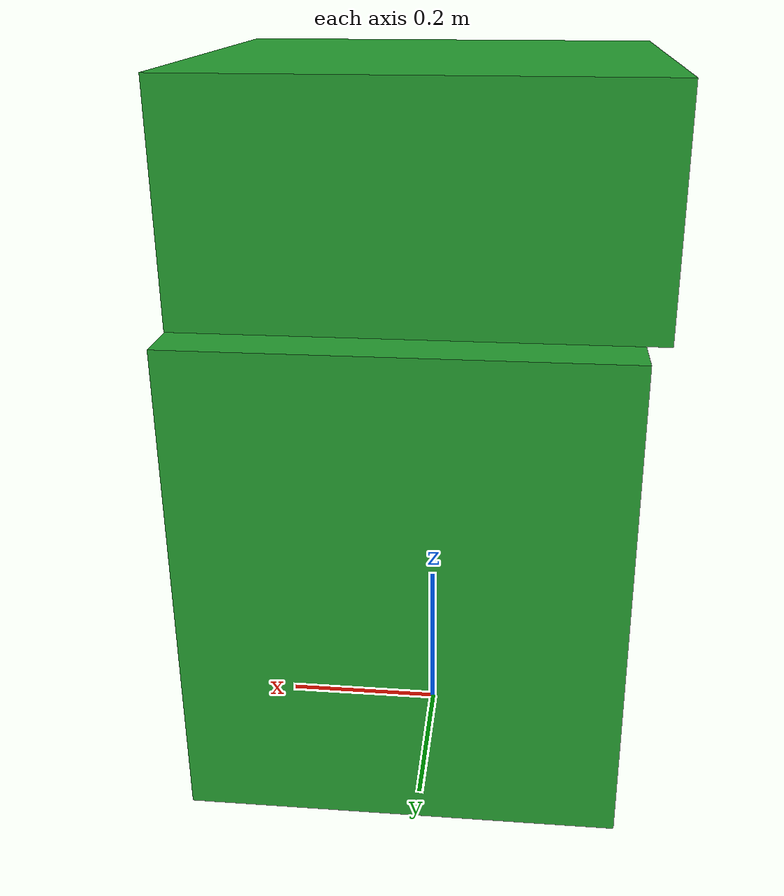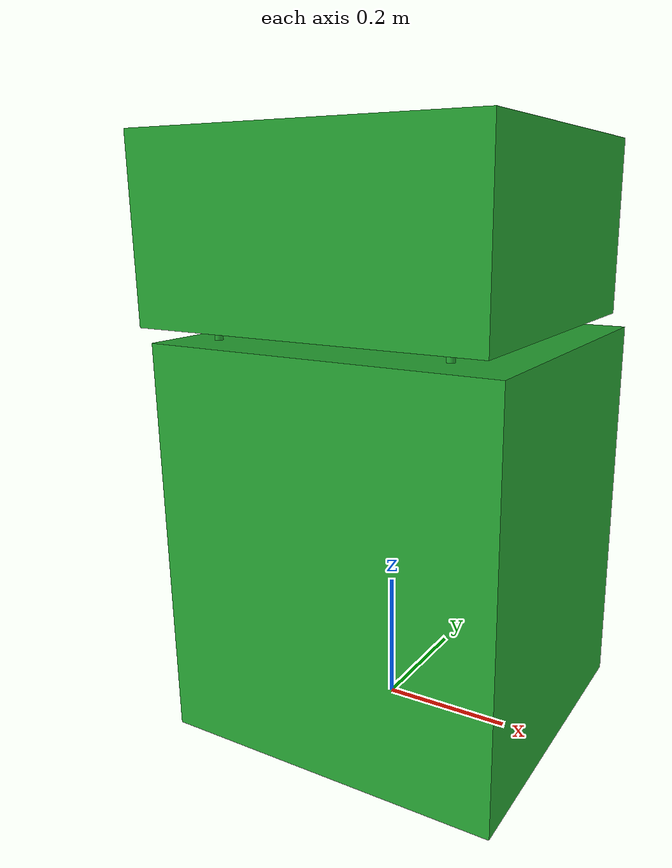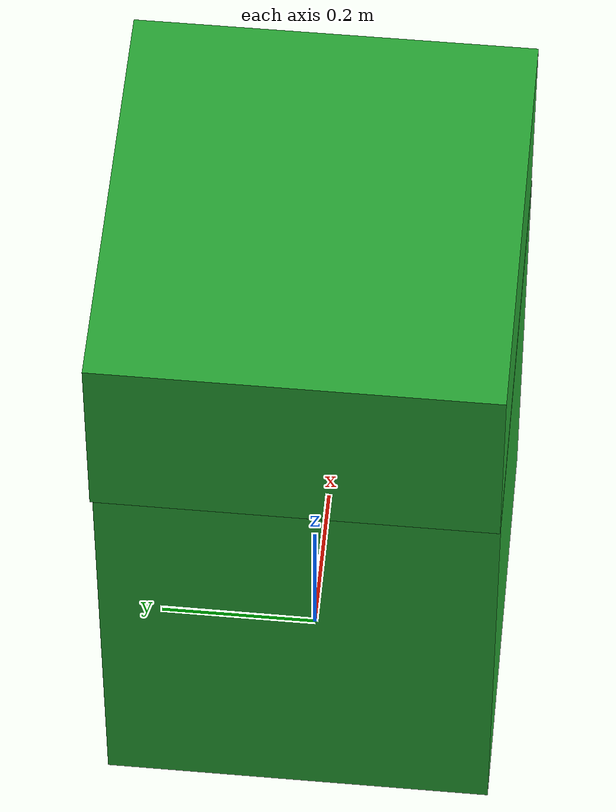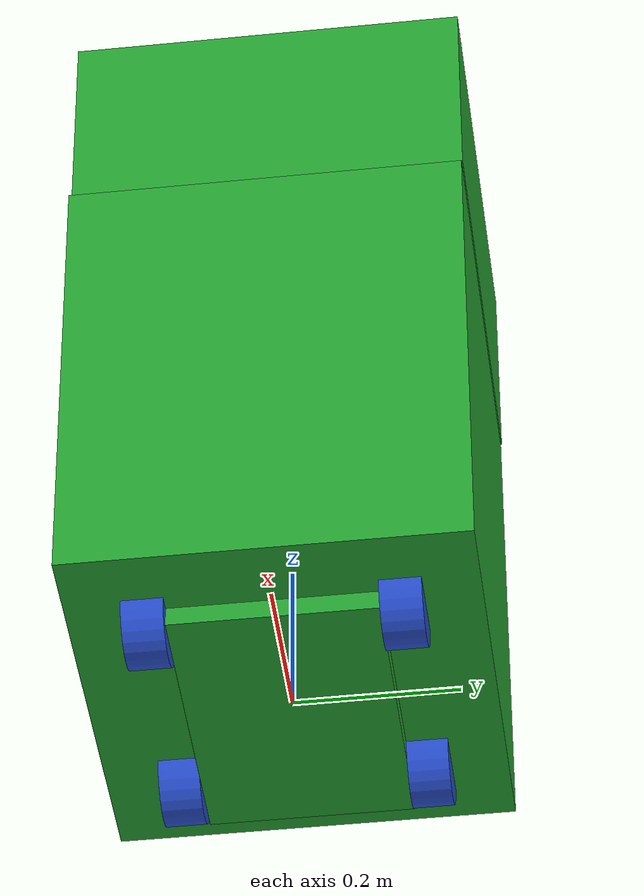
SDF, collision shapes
<sdf version='1.6'>
  <model name='cr2'>
    <link name='base_link'>
      <pose frame=''>0 0 0 0 -0 0</pose>
      <inertial>
        <pose frame=''>0.004161 0 0.135964 0 -0 0</pose>
        <mass>14.419</mass>
        <inertia>
          <ixx>1.02732</ixx>
          <ixy>3.99595e-13</ixy>
          <ixz>-0.00984216</ixz>
          <iyy>1.10989</iyy>
          <iyz>-1.94517e-18</iyz>
          <izz>0.348646</izz>
        </inertia>
      </inertial>
      <collision name='base_link_fixed_joint_lump__base_platform_collision'>
        <pose frame=''>0 0 0 1.5708 -0 1.5708</pose>
        <geometry>
          <box>
            <size>0.25 0.05 0.38</size>
          </box>
        </geometry>
      </collision>
      <collision name='base_link_fixed_joint_lump__body_collision_1'>
        <pose frame=''>0.02 0 0.3 1.5708 -0 1.5708</pose>
        <geometry>
          <box>
            <size>0.486 0.6 0.525</size>
          </box>
        </geometry>
      </collision>
      <collision name='base_link_fixed_joint_lump__head_collision_2'>
        <pose frame=''>0 0 0.75 1.5708 -0 1.5708</pose>
        <geometry>
          <box>
            <size>0.486 0.26 0.525</size>
          </box>
        </geometry>
      </collision>
      <collision name='base_link_fixed_joint_lump__laser_link_collision_3'>
        <pose frame=''>0 0 0.59 0 -0 0</pose>
        <geometry>
          <cylinder>
            <length>0.041</length>
            <radius>0.038</radius>
          </cylinder>
        </geometry>
      </collision>
      <collision name='base_link_fixed_joint_lump__laser_oscillator_collision_4'>
        <pose frame=''>0 0 0.6055 0 -0 -3.14159</pose>
        <geometry>
          <cylinder>
            <length>0.001</length>
            <radius>0.038</radius>
          </cylinder>
        </geometry>
        <surface>
          <contact>
            <ode/>
          </contact>
          <friction>
            <ode/>
          </friction>
        </surface>
      </collision>
      <collision name='base_link_fixed_joint_lump__pillar_FRONT_LEFT_link_collision_5'>
        <pose frame=''>0.1825 0.173 0.6 0 -0 0</pose>
        <geometry>
          <cylinder>
            <length>0.02</length>
            <radius>0.006</radius>
          </cylinder>
        </geometry>
      </collision>
      <collision name='base_link_fixed_joint_lump__pillar_FRONT_RIGHT_link_collision_6'>
        <pose frame=''>0.1825 -0.173 0.6 0 -0 0</pose>
        <geometry>
          <cylinder>
            <length>0.02</length>
            <radius>0.006</radius>
          </cylinder>
        </geometry>
      </collision>
      <collision name='base_link_fixed_joint_lump__pillar_REAR_LEFT_link_collision_7'>
        <pose frame=''>-0.1825 0.173 0.6 0 -0 0</pose>
        <geometry>
          <cylinder>
            <length>0.02</length>
            <radius>0.006</radius>
          </cylinder>
        </geometry>
      </collision>
      <collision name='base_link_fixed_joint_lump__pillar_REAR_RIGHT_link_collision_8'>
        <pose frame=''>-0.1825 -0.173 0.6 0 -0 0</pose>
        <geometry>
          <cylinder>
            <length>0.02</length>
            <radius>0.006</radius>
          </cylinder>
        </geometry>
      </collision>
      <visual name='base_link_fixed_joint_lump__base_platform_visual'>
        <pose frame=''>0 0 0 1.5708 -0 1.5708</pose>
        <geometry>
          <box>
            <size>0.25 0.05 0.38</size>
          </box>
        </geometry>
      </visual>
      <visual name='base_link_fixed_joint_lump__body_visual_1'>
        <pose frame=''>0.27 -0.24 0 1.5708 -0 -3.14159</pose>
        <geometry>
          <mesh>
            <scale>0.001 0.001 0.001</scale>
            <uri>model://cr2_description/meshes/body.stl</uri>
          </mesh>
        </geometry>
      </visual>
      <visual name='base_link_fixed_joint_lump__back_cover_visual_2'>
        <pose frame=''>-0.245 0.229 0 1.50987 0 -1.5708</pose>
        <geometry>
          <mesh>
            <scale>0.001 0.001 0.001</scale>
            <uri>model://cr2_description/meshes/back_cover.stl</uri>
          </mesh>
        </geometry>
      </visual>
      <visual name='base_link_fixed_joint_lump__head_visual_3'>
        <pose frame=''>0.24 -0.215 0.02 1.5708 -0 -3.14159</pose>
        <geometry>
          <mesh>
            <scale>0.001 0.001 0.001</scale>
            <uri>model://cr2_description/meshes/head.stl</uri>
          </mesh>
        </geometry>
      </visual>
      <visual name='base_link_fixed_joint_lump__laser_link_visual_4'>
        <pose frame=''>0 0 0.59 0 -0 0</pose>
        <geometry>
          <cylinder>
            <length>0.041</length>
            <radius>0.038</radius>
          </cylinder>
        </geometry>
      </visual>
      <visual name='base_link_fixed_joint_lump__laser_oscillator_visual_5'>
        <pose frame=''>0 0 0.6055 0 -0 -3.14159</pose>
        <geometry>
          <cylinder>
            <length>0.001</length>
            <radius>0.038</radius>
          </cylinder>
        </geometry>
        <material>
          <script>
            <name>Gazebo/Green</name>
            <uri>file://media/materials/scripts/gazebo.material</uri>
          </script>
        </material>
      </visual>
      <visual name='base_link_fixed_joint_lump__monitor_visual_6'>
        <pose frame=''>0.228 -0 0.76 1.5708 1.45772 0</pose>
        <geometry>
          <box>
            <size>0.13 0.001 0.16</size>
          </box>
        </geometry>
      </visual>
      <visual name='base_link_fixed_joint_lump__tray_visual_7'>
        <pose frame=''>0.218 0.2325 0.855 1.5708 -0 1.5708</pose>
        <geometry>
          <mesh>
            <scale>0.001 0.001 0.001</scale>
            <uri>model://cr2_description/meshes/tray.stl</uri>
          </mesh>
        </geometry>
      </visual>
      <visual name='base_link_fixed_joint_lump__pillar_FRONT_LEFT_link_visual_8'>
        <pose frame=''>0.1825 0.173 0.6 0 -0 0</pose>
        <geometry>
          <cylinder>
            <length>0.02</length>
            <radius>0.006</radius>
          </cylinder>
        </geometry>
      </visual>
      <visual name='base_link_fixed_joint_lump__pillar_FRONT_RIGHT_link_visual_9'>
        <pose frame=''>0.1825 -0.173 0.6 0 -0 0</pose>
        <geometry>
          <cylinder>
            <length>0.02</length>
            <radius>0.006</radius>
          </cylinder>
        </geometry>
      </visual>
      <visual name='base_link_fixed_joint_lump__pillar_REAR_LEFT_link_visual_10'>
        <pose frame=''>-0.1825 0.173 0.6 0 -0 0</pose>
        <geometry>
          <cylinder>
            <length>0.02</length>
            <radius>0.006</radius>
          </cylinder>
        </geometry>
      </visual>
      <visual name='base_link_fixed_joint_lump__pillar_REAR_RIGHT_link_visual_11'>
        <pose frame=''>-0.1825 -0.173 0.6 0 -0 0</pose>
        <geometry>
          <cylinder>
            <length>0.02</length>
            <radius>0.006</radius>
          </cylinder>
        </geometry>
      </visual>
      <velocity_decay/>
      <gravity>1</gravity>
      <gravity>1</gravity>
      <velocity_decay/>
      <sensor name='laser' type='ray'>
        <visualize>0</visualize>
        <update_rate>40</update_rate>
        <ray>
          <scan>
            <horizontal>
              <samples>1081</samples>
              <resolution>1</resolution>
              <min_angle>0</min_angle>
              <max_angle>6.28318</max_angle>
            </horizontal>
          </scan>
          <range>
            <min>0.3</min>
            <max>5</max>
            <resolution>0.01</resolution>
          </range>
          <noise>
            <type>gaussian</type>
            <mean>0</mean>
            <stddev>0.01</stddev>
          </noise>
        </ray>
        <plugin name='gazebo_ros_rplidar_controller' filename='libgazebo_ros_laser.so'>
          <topicName>front/scan</topicName>
          <frameName>laser_oscillator</frameName>
        </plugin>
        <pose frame=''>0 0 0.6055 0 -0 -3.14159</pose>
      </sensor>
    </link>
    <link name='front_left_wheel_link'>
      <pose frame=''>0.16 0.15 0 0 -0 0</pose>
      <inertial>
        <pose frame=''>0 0 0 0 -0 0</pose>
        <mass>2.3</mass>
        <inertia>
          <ixx>0.0033212</ixx>
          <ixy>0</ixy>
          <ixz>0</ixz>
          <iyy>0.0066424</iyy>
          <iyz>0</iyz>
          <izz>0.0033212</izz>
        </inertia>
      </inertial>
      <collision name='front_left_wheel_link_collision'>
        <pose frame=''>0 0 0 1.57075 -0 0</pose>
        <geometry>
          <cylinder>
            <length>0.05</length>
            <radius>0.05</radius>
          </cylinder>
        </geometry>
        <surface>
          <contact>
            <ode>
              <kp>1e+07</kp>
              <kd>1</kd>
            </ode>
          </contact>
          <friction>
            <ode>
              <mu>0</mu>
              <mu2>0</mu2>
            </ode>
          </friction>
        </surface>
      </collision>
      <visual name='front_left_wheel_link_visual'>
        <pose frame=''>0 0 0 1.57075 -0 0</pose>
        <geometry>
          <cylinder>
            <length>0.05</length>
            <radius>0.05</radius>
          </cylinder>
        </geometry>
        <material>
          <script>
            <name>Gazebo/Blue</name>
            <uri>file://media/materials/scripts/gazebo.material</uri>
          </script>
        </material>
      </visual>
      <gravity>1</gravity>
      <velocity_decay/>
    </link>
    <joint name='front_left_wheel' type='revolute'>
      <child>front_left_wheel_link</child>
      <parent>base_link</parent>
      <axis>
        <xyz>0 1 0</xyz>
        <limit>
          <lower>-1e+16</lower>
          <upper>1e+16</upper>
        </limit>
        <dynamics>
          <spring_reference>0</spring_reference>
          <spring_stiffness>0</spring_stiffness>
        </dynamics>
        <use_parent_model_frame>1</use_parent_model_frame>
      </axis>
    </joint>
    <link name='front_right_wheel_link'>
      <pose frame=''>0.16 -0.15 0 0 -0 0</pose>
      <inertial>
        <pose frame=''>0 0 0 0 -0 0</pose>
        <mass>2.3</mass>
        <inertia>
          <ixx>0.0033212</ixx>
          <ixy>0</ixy>
          <ixz>0</ixz>
          <iyy>0.0066424</iyy>
          <iyz>0</iyz>
          <izz>0.0033212</izz>
        </inertia>
      </inertial>
      <collision name='front_right_wheel_link_collision'>
        <pose frame=''>0 0 0 1.57075 -0 0</pose>
        <geometry>
          <cylinder>
            <length>0.05</length>
            <radius>0.05</radius>
          </cylinder>
        </geometry>
        <surface>
          <contact>
            <ode>
              <kp>1e+07</kp>
              <kd>1</kd>
            </ode>
          </contact>
          <friction>
            <ode>
              <mu>0</mu>
              <mu2>0</mu2>
            </ode>
          </friction>
        </surface>
      </collision>
      <visual name='front_right_wheel_link_visual'>
        <pose frame=''>0 0 0 1.57075 -0 0</pose>
        <geometry>
          <cylinder>
            <length>0.05</length>
            <radius>0.05</radius>
          </cylinder>
        </geometry>
        <material>
          <script>
            <name>Gazebo/Blue</name>
            <uri>file://media/materials/scripts/gazebo.material</uri>
          </script>
        </material>
      </visual>
      <gravity>1</gravity>
      <velocity_decay/>
    </link>
    <joint name='front_right_wheel' type='revolute'>
      <child>front_right_wheel_link</child>
      <parent>base_link</parent>
      <axis>
        <xyz>0 1 0</xyz>
        <limit>
          <lower>-1e+16</lower>
          <upper>1e+16</upper>
        </limit>
        <dynamics>
          <spring_reference>0</spring_reference>
          <spring_stiffness>0</spring_stiffness>
        </dynamics>
        <use_parent_model_frame>1</use_parent_model_frame>
      </axis>
    </joint>
    <link name='rear_left_wheel_link'>
      <pose frame=''>-0.14 0.15 0 0 -0 0</pose>
      <inertial>
        <pose frame=''>0 0 0 0 -0 0</pose>
        <mass>2.3</mass>
        <inertia>
          <ixx>0.0033212</ixx>
          <ixy>0</ixy>
          <ixz>0</ixz>
          <iyy>0.0066424</iyy>
          <iyz>0</iyz>
          <izz>0.0033212</izz>
        </inertia>
      </inertial>
      <collision name='rear_left_wheel_link_collision'>
        <pose frame=''>0 0 0 1.57075 -0 0</pose>
        <geometry>
          <cylinder>
            <length>0.05</length>
            <radius>0.05</radius>
          </cylinder>
        </geometry>
        <surface>
          <contact>
            <ode>
              <kp>1e+07</kp>
              <kd>1</kd>
            </ode>
          </contact>
          <friction>
            <ode>
              <mu>0</mu>
              <mu2>0</mu2>
            </ode>
          </friction>
        </surface>
      </collision>
      <visual name='rear_left_wheel_link_visual'>
        <pose frame=''>0 0 0 1.57075 -0 0</pose>
        <geometry>
          <cylinder>
            <length>0.05</length>
            <radius>0.05</radius>
          </cylinder>
        </geometry>
        <material>
          <script>
            <name>Gazebo/Blue</name>
            <uri>file://media/materials/scripts/gazebo.material</uri>
          </script>
        </material>
      </visual>
      <gravity>1</gravity>
      <velocity_decay/>
    </link>
    <joint name='rear_left_wheel' type='revolute'>
      <child>rear_left_wheel_link</child>
      <parent>base_link</parent>
      <axis>
        <xyz>0 1 0</xyz>
        <limit>
          <lower>-1e+16</lower>
          <upper>1e+16</upper>
        </limit>
        <dynamics>
          <spring_reference>0</spring_reference>
          <spring_stiffness>0</spring_stiffness>
        </dynamics>
        <use_parent_model_frame>1</use_parent_model_frame>
      </axis>
    </joint>
    <link name='rear_right_wheel_link'>
      <pose frame=''>-0.14 -0.15 0 0 -0 0</pose>
      <inertial>
        <pose frame=''>0 0 0 0 -0 0</pose>
        <mass>2.3</mass>
        <inertia>
          <ixx>0.0033212</ixx>
          <ixy>0</ixy>
          <ixz>0</ixz>
          <iyy>0.0066424</iyy>
          <iyz>0</iyz>
          <izz>0.0033212</izz>
        </inertia>
      </inertial>
      <collision name='rear_right_wheel_link_collision'>
        <pose frame=''>0 0 0 1.57075 -0 0</pose>
        <geometry>
          <cylinder>
            <length>0.05</length>
            <radius>0.05</radius>
          </cylinder>
        </geometry>
        <surface>
          <contact>
            <ode>
              <kp>1e+07</kp>
              <kd>1</kd>
            </ode>
          </contact>
          <friction>
            <ode>
              <mu>0</mu>
              <mu2>0</mu2>
            </ode>
          </friction>
        </surface>
      </collision>
      <visual name='rear_right_wheel_link_visual'>
        <pose frame=''>0 0 0 1.57075 -0 0</pose>
        <geometry>
          <cylinder>
            <length>0.05</length>
            <radius>0.05</radius>
          </cylinder>
        </geometry>
        <material>
          <script>
            <name>Gazebo/Blue</name>
            <uri>file://media/materials/scripts/gazebo.material</uri>
          </script>
        </material>
      </visual>
      <gravity>1</gravity>
      <velocity_decay/>
    </link>
    <joint name='rear_right_wheel' type='revolute'>
      <child>rear_right_wheel_link</child>
      <parent>base_link</parent>
      <axis>
        <xyz>0 1 0</xyz>
        <limit>
          <lower>-1e+16</lower>
          <upper>1e+16</upper>
        </limit>
        <dynamics>
          <spring_reference>0</spring_reference>
          <spring_stiffness>0</spring_stiffness>
        </dynamics>
        <use_parent_model_frame>1</use_parent_model_frame>
      </axis>
    </joint>
    <static>0</static>
    <plugin name='gazebo_ros_control' filename='libgazebo_ros_control.so'>
      <robotNamespace>/</robotNamespace>
      <legacyModeNS>1</legacyModeNS>
    </plugin>
    <plugin name='sample' filename='libmove_object_plugin.so'/>
    <plugin name='ridgeback_ros_force_based_move' filename='./libridgeback_ros_force_based_move.so'>
      <robotNamespace>/</robotNamespace>
      <commandTopic>cmd_vel</commandTopic>
      <odometryTopic>odom</odometryTopic>
      <odometryFrame>odom</odometryFrame>
      <odometryRate>25.0</odometryRate>
      <robotBaseFrame>base_link</robotBaseFrame>
      <cmdVelTimeOut>0.25</cmdVelTimeOut>
      <publishOdometryTf>0.0</publishOdometryTf>
      <yaw_velocity_p_gain>500.0</yaw_velocity_p_gain>
      <x_velocity_p_gain>10000.0</x_velocity_p_gain>
      <y_velocity_p_gain>10000.0</y_velocity_p_gain>
    </plugin>
  </model>
</sdf>
